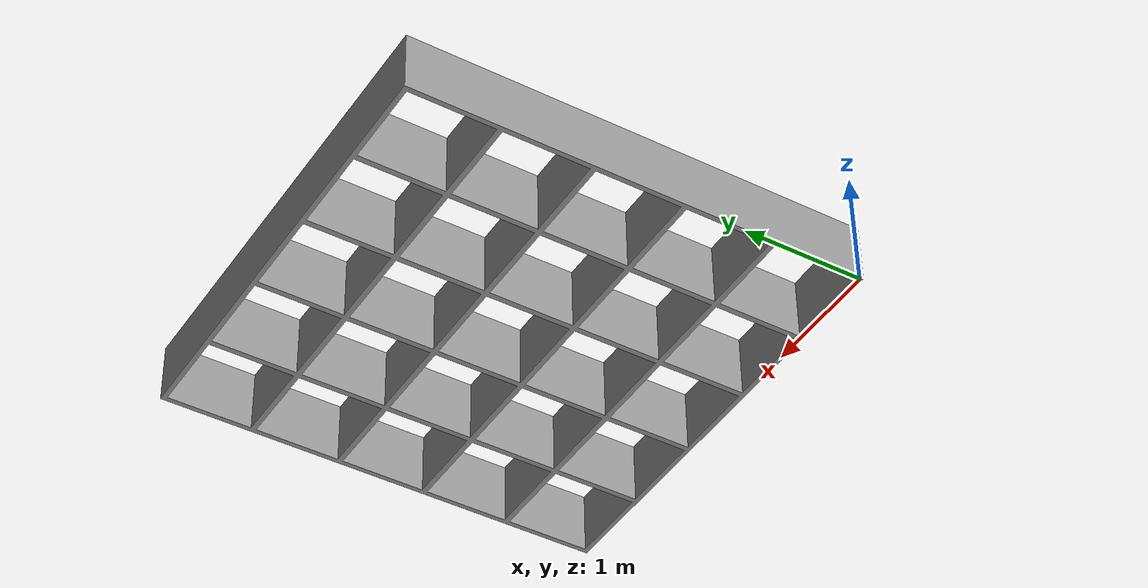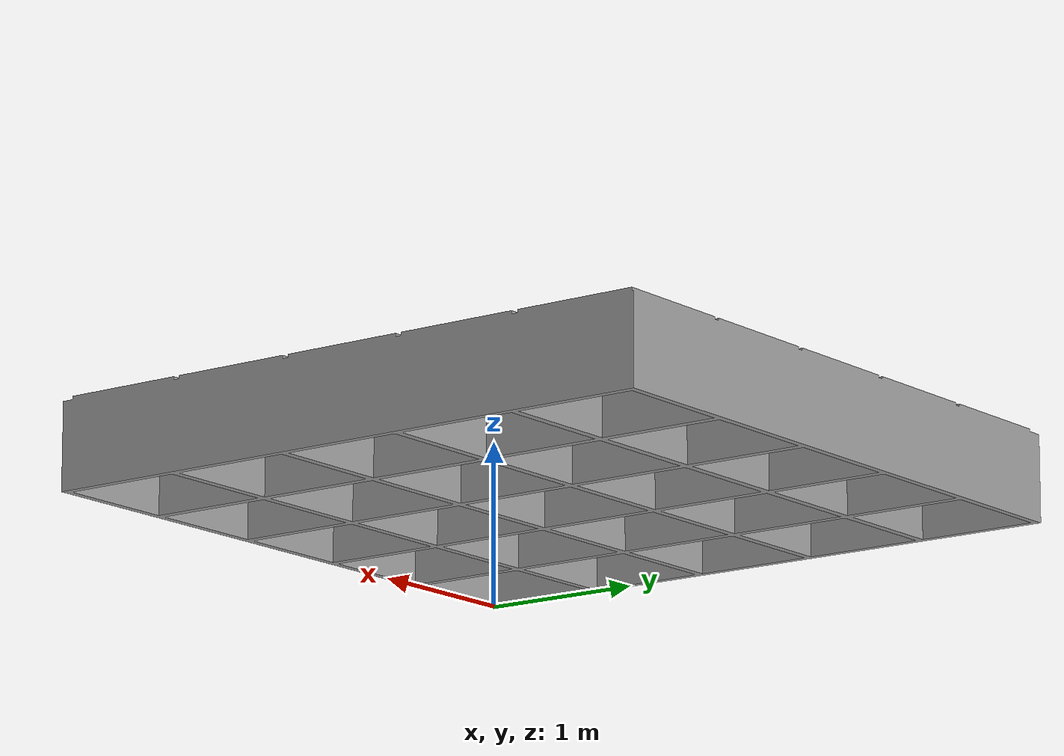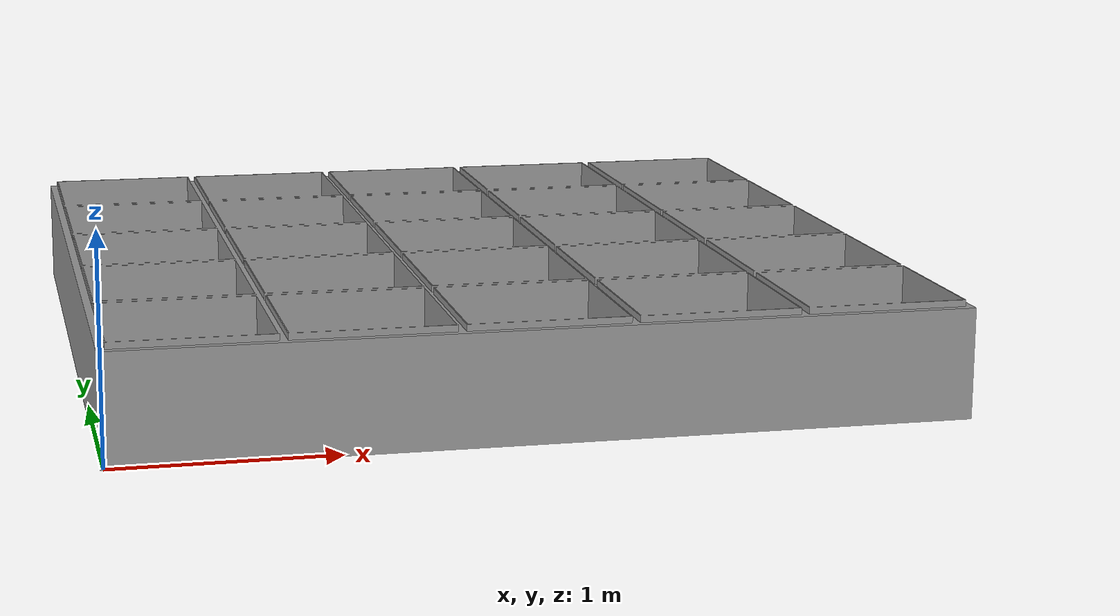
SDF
<?xml version='1.0'?>
<sdf version='1.6'>
  <model name='wheel_smooth'>
    <link name='wheel'>
      <inertial>
        <mass>1000</mass>
        <inertia>
          <ixx>10</ixx>
          <ixy>0</ixy>
          <ixz>0</ixz>
          <iyy>10</iyy>
          <iyz>0</iyz>
          <izz>10</izz>
        </inertia>
        <pose frame=''>0 0 0 0 0 0</pose>
      </inertial>
      <pose frame=''>-0.0175 -0.0175 0 1.5707 0 0</pose>

      <gravity>1</gravity>
      <self_collide>0</self_collide>
      <kinematic>1</kinematic>
      <enable_wind>0</enable_wind>
      <visual name='visual'>
        <pose frame=''>0 0 0 0 -0 0</pose>
        <geometry>
          <mesh>
            <uri>model://model/mesh/cells.stl</uri>
            <scale>0.01 0.01 0.01</scale>
          </mesh>
        </geometry>
        <material>
          <lighting>1</lighting>
          <script>
            <uri>file://media/materials/scripts/gazebo.material</uri>
            <name>Gazebo/Grey</name>
          </script>
          <shader type='vertex'>
            <normal_map>__default__</normal_map>
          </shader>
          <ambient>0.3 0.3 0.3 1</ambient>
          <diffuse>0.7 0.7 0.7 1</diffuse>
          <specular>0.01 0.01 0.01 1</specular>
          <emissive>0 0 0 1</emissive>
        </material>
        <transparency>0</transparency>
        <cast_shadows>1</cast_shadows>
      </visual>
      <collision name='collision'>
        <laser_retro>0</laser_retro>
        <max_contacts>3</max_contacts>
        <pose frame=''>0 0 0 0 -0 0</pose>
        <geometry>
          <mesh>
            <uri>model://model/mesh/cells.stl</uri>
            <scale>0.01 0.01 0.01</scale>
          </mesh>
        </geometry>
        <surface>
          <friction>
            <ode>
              <mu>50.0</mu>
              <mu2>50.0</mu2>
              <fdir1>0 0 0</fdir1>
              <slip1>0</slip1>
              <slip2>0</slip2>
            </ode>
            <torsional>
              <coefficient>0.1</coefficient>
              <patch_radius>0</patch_radius>
              <use_patch_radius>1</use_patch_radius>

              <ode>
                <slip>0</slip>
              </ode>
            </torsional>
          </friction>
          <bounce>
            <restitution_coefficient>0</restitution_coefficient>
            <threshold>1e+06</threshold>
          </bounce>
          <contact>
            <collide_without_contact>0</collide_without_contact>
            <collide_without_contact_bitmask>1</collide_without_contact_bitmask>
            <collide_bitmask>1</collide_bitmask>
            <ode>
              <soft_cfm>0.4</soft_cfm>
              <soft_erp>0</soft_erp>
              <kp>1e+13</kp>
              <kd>1000</kd>
              <max_vel>0.0</max_vel>
              <min_depth>0.0001</min_depth>
            </ode>
            <bullet>
              <split_impulse>1</split_impulse>
              <split_impulse_penetration_threshold>-0.01</split_impulse_penetration_threshold>
              <soft_cfm>0.8</soft_cfm>
              <soft_erp>0</soft_erp>
              <kp>1e+13</kp>
              <kd>1000</kd>
            </bullet>
          </contact>
        </surface>
      </collision>
    </link>
    <static>1</static>
    <allow_auto_disable>1</allow_auto_disable>
  </model>
</sdf>
